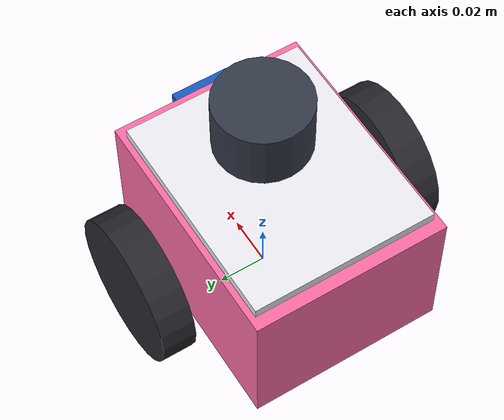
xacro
<?xml version="1.0"?>
<robot name="pinky" xmlns:xacro="http://www.ros.org/wiki/xacro">

  <xacro:arg name="robot_name" default="pinky_01"/>
  <xacro:arg name="body_color" default="0.98 0.42 0.65 1.0"/>

  <!-- 카메라는 대수만큼 GPU 렌더 패스를 잡아먹는다. 관제 링크는 라이다만
       쓰므로 기본은 꺼 두고, 영상이 필요할 때만 켠다. -->
  <xacro:arg name="enable_camera" default="false"/>

  <xacro:property name="ns" value="$(arg robot_name)"/>
  <xacro:property name="prefix" value="$(arg robot_name)/"/>

  <xacro:include filename="inertial_macros.xacro"/>

  <!-- 실기 치수 -->
  <xacro:property name="chassis_length" value="0.10"/>
  <xacro:property name="chassis_width" value="0.08"/>
  <xacro:property name="chassis_height" value="0.06"/>
  <xacro:property name="chassis_mass" value="1.0"/>
  <xacro:property name="wheel_separation" value="0.11"/>
  <xacro:property name="wheel_radius" value="0.03"/>
  <xacro:property name="wheel_thickness" value="0.014"/>
  <xacro:property name="wheel_mass" value="0.05"/>
  <xacro:property name="caster_radius" value="0.01"/>
  <xacro:property name="caster_mass" value="0.10"/>

  <material name="pinky_body"><color rgba="$(arg body_color)"/></material>
  <material name="pinky_dark"><color rgba="0.15 0.15 0.18 1.0"/></material>
  <material name="pinky_lidar"><color rgba="0.20 0.22 0.28 1.0"/></material>
  <material name="pinky_lens"><color rgba="0.10 0.35 0.75 1.0"/></material>
  <material name="pinky_deck"><color rgba="0.92 0.92 0.95 1.0"/></material>

  <!-- ───────────────────────────────────────────────── 본체 -->

  <link name="${prefix}base_footprint"/>

  <joint name="${prefix}base_link_fixed_joint" type="fixed">
    <parent link="${prefix}base_footprint"/>
    <child link="${prefix}base_link"/>
    <origin xyz="0 0 ${wheel_radius}" rpy="0 0 0"/>
  </joint>

  <link name="${prefix}base_link"/>

  <joint name="${prefix}chassis_fixed_joint" type="fixed">
    <parent link="${prefix}base_link"/>
    <child link="${prefix}chassis"/>
    <origin xyz="0 0 0" rpy="0 0 0"/>
  </joint>

  <link name="${prefix}chassis">
    <visual>
      <origin xyz="-0.01 0 0.01" rpy="0 0 0"/>
      <geometry>
        <box size="${chassis_length} ${chassis_width} ${chassis_height}"/>
      </geometry>
      <material name="pinky_body"/>
    </visual>
    <!-- 상판(적재 데크) -->
    <visual>
      <origin xyz="-0.01 0 0.042" rpy="0 0 0"/>
      <geometry><box size="0.09 0.075 0.004"/></geometry>
      <material name="pinky_deck"/>
    </visual>
    <collision>
      <origin xyz="-0.01 0 0.01" rpy="0 0 0"/>
      <geometry>
        <box size="${chassis_length} ${chassis_width} ${chassis_height}"/>
      </geometry>
    </collision>
    <xacro:inertial_box mass="${chassis_mass}" x="${chassis_length}"
                        y="${chassis_width}" z="${chassis_height}">
      <origin xyz="-0.01 0 0.01" rpy="0 0 0"/>
    </xacro:inertial_box>
  </link>

  <joint name="${prefix}caster_fixed_joint" type="fixed">
    <parent link="${prefix}chassis"/>
    <child link="${prefix}caster"/>
    <origin xyz="-0.044 0 -0.02" rpy="0 0 0"/>
  </joint>

  <link name="${prefix}caster">
    <visual>
      <geometry><sphere radius="${caster_radius}"/></geometry>
      <material name="pinky_dark"/>
    </visual>
    <collision>
      <geometry><sphere radius="${caster_radius}"/></geometry>
    </collision>
    <xacro:inertial_sphere mass="${caster_mass}" radius="${caster_radius}">
      <origin xyz="0 0 0" rpy="0 0 0"/>
    </xacro:inertial_sphere>
  </link>

  <!-- ───────────────────────────────────────────────── 구동륜 -->

  <xacro:macro name="drive_wheel" params="side reflect axis_z">
    <joint name="${prefix}${side}_wheel_joint" type="continuous">
      <parent link="${prefix}base_link"/>
      <child link="${prefix}${side}_wheel"/>
      <origin xyz="0 ${reflect * wheel_separation / 2} 0"
              rpy="${reflect * -pi/2} 0 0"/>
      <axis xyz="0 0 ${axis_z}"/>
    </joint>

    <link name="${prefix}${side}_wheel">
      <visual>
        <geometry>
          <cylinder radius="${wheel_radius}" length="${wheel_thickness}"/>
        </geometry>
        <material name="pinky_dark"/>
      </visual>
      <collision>
        <geometry>
          <cylinder radius="${wheel_radius}" length="${wheel_thickness}"/>
        </geometry>
      </collision>
      <xacro:inertial_cylinder mass="${wheel_mass}" length="${wheel_thickness}"
                               radius="${wheel_radius}">
        <origin xyz="0 0 0" rpy="0 0 0"/>
      </xacro:inertial_cylinder>
    </link>
  </xacro:macro>

  <xacro:drive_wheel side="left" reflect="1" axis_z="1"/>
  <xacro:drive_wheel side="right" reflect="-1" axis_z="-1"/>

  <!-- ───────────────────────────────────────────────── 센서 -->

  <!-- 2D 라이다 (LD06 상당) -->
  <joint name="${prefix}lidar_mount_fixed_joint" type="fixed">
    <parent link="${prefix}chassis"/>
    <child link="${prefix}lidar_mount"/>
    <origin xyz="0 0 0.052" rpy="0 0 0"/>
  </joint>

  <link name="${prefix}lidar_mount">
    <visual>
      <origin xyz="0 0 0.012" rpy="0 0 0"/>
      <geometry><cylinder radius="0.019" length="0.024"/></geometry>
      <material name="pinky_lidar"/>
    </visual>
    <collision>
      <origin xyz="0 0 0.012" rpy="0 0 0"/>
      <geometry><cylinder radius="0.019" length="0.024"/></geometry>
    </collision>
    <xacro:inertial_cylinder mass="0.06" length="0.024" radius="0.019">
      <origin xyz="0 0 0.012" rpy="0 0 0"/>
    </xacro:inertial_cylinder>
  </link>

  <link name="${prefix}laser_link"/>

  <joint name="${prefix}laser_link_fixed_joint" type="fixed">
    <parent link="${prefix}lidar_mount"/>
    <child link="${prefix}laser_link"/>
    <origin xyz="0 0 0.020" rpy="0 0 0"/>
  </joint>

  <!-- 전방 카메라 -->
  <joint name="${prefix}camera_mount_fixed_joint" type="fixed">
    <parent link="${prefix}chassis"/>
    <child link="${prefix}camera_mount"/>
    <origin xyz="0.042 0 0.028" rpy="0 0 0"/>
  </joint>

  <link name="${prefix}camera_mount">
    <visual>
      <geometry><box size="0.008 0.024 0.016"/></geometry>
      <material name="pinky_lens"/>
    </visual>
    <xacro:inertial_box mass="0.02" x="0.008" y="0.024" z="0.016">
      <origin xyz="0 0 0" rpy="0 0 0"/>
    </xacro:inertial_box>
  </link>

  <link name="${prefix}camera_link"/>

  <joint name="${prefix}camera_link_fixed_joint" type="fixed">
    <parent link="${prefix}camera_mount"/>
    <child link="${prefix}camera_link"/>
    <origin xyz="0.005 0 0" rpy="0 0 0"/>
  </joint>

  <link name="${prefix}imu_link"/>

  <joint name="${prefix}imu_link_fixed_joint" type="fixed">
    <parent link="${prefix}chassis"/>
    <child link="${prefix}imu_link"/>
    <origin xyz="0 0 0.03" rpy="0 0 0"/>
  </joint>

  <!-- ───────────────────────────────────────────────── Gazebo -->

  <gazebo reference="${prefix}left_wheel">
    <mu1 value="1.2"/><mu2 value="1.2"/>
  </gazebo>
  <gazebo reference="${prefix}right_wheel">
    <mu1 value="1.2"/><mu2 value="1.2"/>
  </gazebo>
  <gazebo reference="${prefix}caster">
    <mu1 value="0.01"/><mu2 value="0.01"/>
  </gazebo>
  <gazebo reference="${prefix}chassis">
    <mu1 value="0.01"/><mu2 value="0.01"/>
  </gazebo>

  <gazebo>
    <plugin filename="gz-sim-diff-drive-system"
            name="gz::sim::systems::DiffDrive">
      <left_joint>${prefix}left_wheel_joint</left_joint>
      <right_joint>${prefix}right_wheel_joint</right_joint>
      <wheel_separation>0.096</wheel_separation>
      <wheel_radius>${wheel_radius}</wheel_radius>

      <min_velocity>-0.5</min_velocity>
      <max_velocity>0.5</max_velocity>
      <min_acceleration>-2.0</min_acceleration>
      <max_acceleration>2.0</max_acceleration>

      <topic>/${ns}/cmd_vel</topic>
      <odom_topic>/${ns}/odom</odom_topic>
      <tf_topic>/${ns}/tf</tf_topic>
      <frame_id>${prefix}odom</frame_id>
      <child_frame_id>${prefix}base_footprint</child_frame_id>
      <odom_publisher_frequency>30</odom_publisher_frequency>
    </plugin>

    <plugin filename="gz-sim-joint-state-publisher-system"
            name="gz::sim::systems::JointStatePublisher">
      <topic>/${ns}/joint_states</topic>
      <joint_name>${prefix}left_wheel_joint</joint_name>
      <joint_name>${prefix}right_wheel_joint</joint_name>
    </plugin>
  </gazebo>

  <gazebo reference="${prefix}laser_link">
    <sensor name="laser" type="gpu_lidar">
      <always_on>true</always_on>
      <visualize>true</visualize>
      <update_rate>10</update_rate>
      <topic>/${ns}/scan</topic>
      <gz_frame_id>${prefix}laser_link</gz_frame_id>
      <lidar>
        <scan>
          <horizontal>
            <samples>360</samples>
            <resolution>1</resolution>
            <min_angle>${-pi}</min_angle>
            <max_angle>${pi}</max_angle>
          </horizontal>
        </scan>
        <range>
          <min>0.10</min>
          <max>6.0</max>
          <resolution>0.02</resolution>
        </range>
        <noise>
          <type>gaussian</type>
          <mean>0.0</mean>
          <stddev>0.01</stddev>
        </noise>
      </lidar>
    </sensor>
  </gazebo>

  <xacro:if value="$(arg enable_camera)">
    <gazebo reference="${prefix}camera_link">
      <sensor name="camera" type="camera">
        <pose>0 0 0 0 0 0</pose>
        <always_on>true</always_on>
        <update_rate>15</update_rate>
        <topic>/${ns}/camera/image_raw</topic>
        <gz_frame_id>${prefix}camera_link</gz_frame_id>
        <camera name="pinky_camera">
          <camera_info_topic>/${ns}/camera/camera_info</camera_info_topic>
          <horizontal_fov>1.08</horizontal_fov>
          <image><width>640</width><height>360</height><format>R8G8B8</format></image>
          <clip><near>0.02</near><far>50</far></clip>
        </camera>
      </sensor>
    </gazebo>
  </xacro:if>

  <gazebo reference="${prefix}imu_link">
    <sensor name="imu" type="imu">
      <always_on>true</always_on>
      <update_rate>100</update_rate>
      <topic>/${ns}/imu</topic>
      <gz_frame_id>${prefix}imu_link</gz_frame_id>
    </sensor>
  </gazebo>

</robot>

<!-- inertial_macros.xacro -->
<!-- 기본 도형의 관성 텐서 매크로. -->
<robot xmlns:xacro="http://www.ros.org/wiki/xacro">

  <xacro:macro name="inertial_sphere" params="mass radius *origin">
    <inertial>
      <xacro:insert_block name="origin"/>
      <mass value="${mass}"/>
      <inertia ixx="${(2/5) * mass * (radius*radius)}" ixy="0.0" ixz="0.0"
               iyy="${(2/5) * mass * (radius*radius)}" iyz="0.0"
               izz="${(2/5) * mass * (radius*radius)}"/>
    </inertial>
  </xacro:macro>

  <xacro:macro name="inertial_box" params="mass x y z *origin">
    <inertial>
      <xacro:insert_block name="origin"/>
      <mass value="${mass}"/>
      <inertia ixx="${(1/12) * mass * (y*y+z*z)}" ixy="0.0" ixz="0.0"
               iyy="${(1/12) * mass * (x*x+z*z)}" iyz="0.0"
               izz="${(1/12) * mass * (x*x+y*y)}"/>
    </inertial>
  </xacro:macro>

  <xacro:macro name="inertial_cylinder" params="mass length radius *origin">
    <inertial>
      <xacro:insert_block name="origin"/>
      <mass value="${mass}"/>
      <inertia ixx="${(1/12) * mass * (3*radius*radius + length*length)}" ixy="0.0" ixz="0.0"
               iyy="${(1/12) * mass * (3*radius*radius + length*length)}" iyz="0.0"
               izz="${(1/2) * mass * (radius*radius)}"/>
    </inertial>
  </xacro:macro>

</robot>
